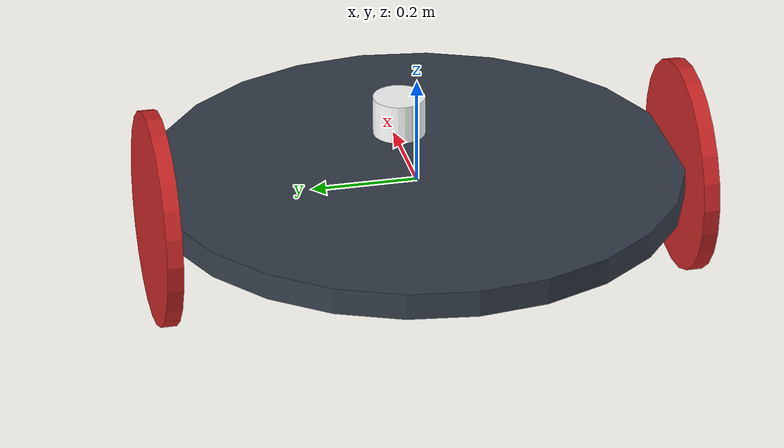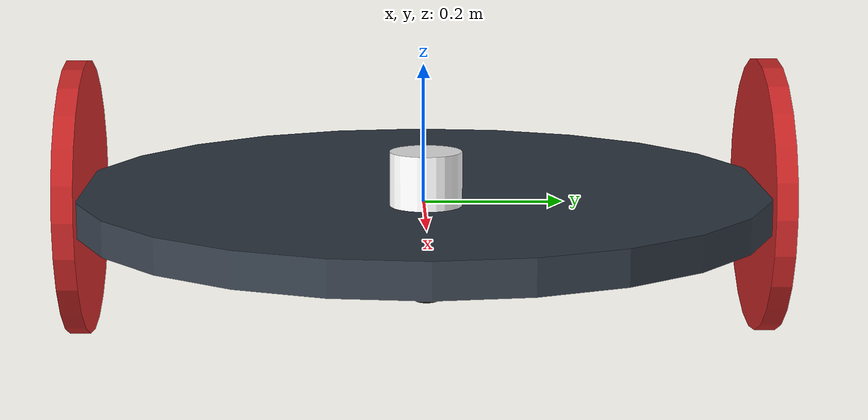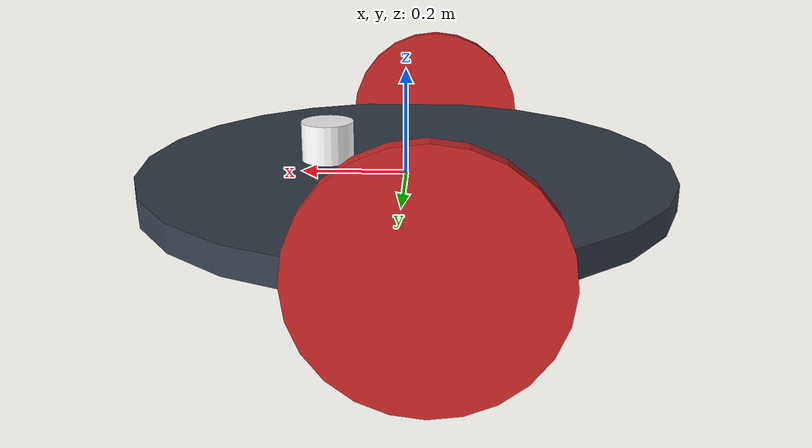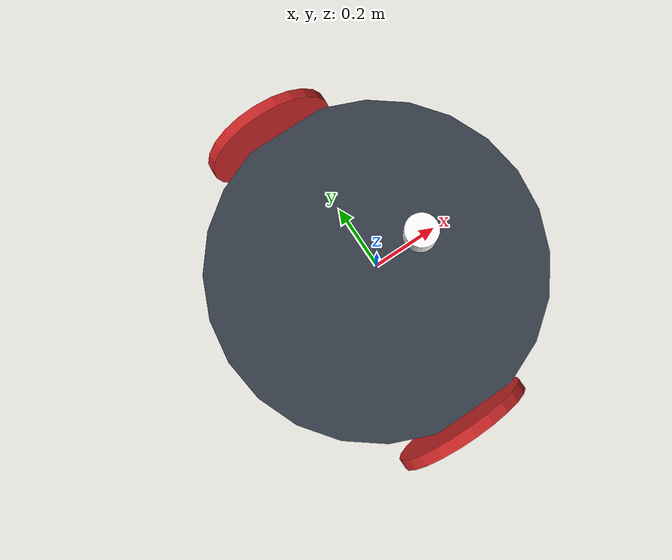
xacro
<?xml version="1.0" ?>

<robot name="mybot" xmlns:xacro="http://www.ros.org/wiki/xacro">

<!-- Include the Xacro files -->
  <xacro:include filename="$(find bot_description)/urdf/materials.xacro" />
  <xacro:include filename="$(find bot_description)/urdf/mybot.gazebo" />
  <xacro:include filename="$(find bot_description)/urdf/macro.xacro" />

 <!-- chassis definition -->
  <link name="link_chassis">
    <!-- pose and inertial -->
    <pose>0 0 0.1 0 0 0</pose>

    <inertial>
      <mass value="5"/>
      <origin rpy="0 0 0" xyz="0 0 0.1"/>
      <inertia ixx="0.0395416666667" ixy="0" ixz="0" iyy="0.106208333333" iyz="0" izz="0.106208333333"/>
    </inertial>

    <collision name="collision_chassis">
      <geometry>
        <cylinder length="0.05" radius="0.5"/>
      </geometry>
    </collision>

    <visual>
      <origin rpy="0 0 0" xyz="0 0 0"/>
      <geometry>
        <cylinder length="0.05" radius="0.5"/>
      </geometry>
      <material name="blue"/>
    </visual>

    <!-- caster front -->
    <collision name="caster_front_collision">
      <origin rpy=" 0 0 0" xyz="0.35 0 -0.05"/>
      <geometry>
        <sphere radius="0.05"/>
      </geometry>
      <surface>
        <friction>
          <ode>
            <mu>0</mu>
            <mu2>0</mu2>
            <fdir1>0 0 0</fdir1>
            <slip1>1.0</slip1>
            <slip2>1.0</slip2>
          </ode>
        </friction>
      </surface>
    </collision>
    <visual name="caster_front_visual">
      <origin rpy=" 0 0 0" xyz="0.2 0 -0.05"/>
      <geometry>
        <sphere radius="0.05"/>
      </geometry>
    </visual>
  </link>

  <!-- Link for laser -->
  <link name="sensor_laser">
    <inertial>
      <origin xyz="0 0 0" rpy="0 0 0" />
      <mass value="4" />
      <xacro:cylinder_inertia mass="1" r="0.05" l="0.1" />
    </inertial>

    <visual>
      <origin xyz="0 0 0" rpy="0 0 0" />
      <geometry>
        <cylinder radius="0.05" length="0.1"/>
      </geometry>
      <material name="white" />
      <material name="laserLight" />
    </visual>

    <collision>
      <origin xyz="0 0 0" rpy="0 0 0"/>
      <geometry>
        <cylinder radius="0.05" length="0.1"/>
      </geometry>
      <material name="collisionLaser" />
    </collision>
  </link>

  <!-- Joint for laser -->
  <joint name="joint_sensor_laser" type="fixed">
    <origin xyz="0.15 0 0.05" rpy="0 0 0"/>
    <parent link="link_chassis"/>
    <child link="sensor_laser"/>
  </joint>

  <!-- Right Wheel Link -->
  <xacro:link_wheel name="link_right_wheel" />

  <!--   Joint for right wheel  -->
  <xacro:joint_wheel name="joint_right_wheel"  child="link_right_wheel"  origin_xyz="-0.05 0.5 0"  />

  <!-- Left Wheel link -->
  <xacro:link_wheel name="link_left_wheel" />

  <!--   Joint for left wheel  -->
  <xacro:joint_wheel name="joint_left_wheel"   child="link_left_wheel"   origin_xyz="-0.05 -0.5 0"  />
  </robot>

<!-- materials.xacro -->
<robot name="mybot" xmlns:xacro="https://www.ros.org/wiki/xacro" >
  <material name="black">
    <color rgba="0.0 0.0 0.0 1.0"/>
  </material>
  <material name="blue">
    <color rgba="0.203125 0.23828125 0.28515625 1.0"/>
  </material>
  <material name="green">
    <color rgba="0.0 0.8 0.0 1.0"/>
  </material>
  <material name="grey">
    <color rgba="0.3 0.3 0.3 1.0"/>
  </material>
  <material name="orange">
    <color rgba="1.0 0.423529411765 0.0392156862745 1.0"/>
  </material>
  <material name="brown">
    <color rgba="0.870588235294 0.811764705882 0.764705882353 1.0"/>
  </material>
  <material name="red">
    <color rgba="0.80078125 0.12890625 0.1328125 1.0"/>
  </material>
 <material name="white">
    <color rgba="1.0 1.0 1.0 1.0"/>
  </material>
  <material name="laserLight">
    <lighting>1</lighting>
    <ambient>0.3 0.3 0.3 1</ambient>
    <diffuse>0.7 0.7 0.7 1</diffuse>
    <specular>0.01 0.01 0.01 1</specular>
    <emissive>0 0 0 1</emissive>
  </material>
  <material name="collisionLaser">
    <laser_retro>0</laser_retro>
    <max_contacts>10</max_contacts>
  </material>
  </robot>

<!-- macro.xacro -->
<robot xmlns:xacro="http://www.ros.org/wiki/xacro">
  <xacro:macro name="link_wheel" params="name">
    <link name="${name}">
      <inertial>
        <mass value="0.2"/>
        <origin rpy="0 1.5707 1.5707" xyz="0 0 0"/>
        <inertia ixx="0.000526666666667" ixy="0" ixz="0" iyy="0.000526666666667" iyz="0" izz="0.001"/>
      </inertial>
      <collision name="link_right_wheel_collision">
        <origin rpy="0 1.5707 1.5707" xyz="0 0 0"/>
        <geometry>
          <cylinder length="0.03" radius="0.2"/>
        </geometry>
      </collision>
      <visual name="${name}_visual">
        <origin rpy="0 1.5707 1.5707" xyz="0 0 0"/>
        <geometry>
          <cylinder length="0.03" radius="0.2"/>
        </geometry>
      </visual>
    </link>
  </xacro:macro>

  <xacro:macro name="joint_wheel" params="name child origin_xyz">
    <joint name="${name}" type="continuous">
      <origin rpy="0 0 0" xyz="${origin_xyz}"/>
      <child link="${child}"/>
      <parent link="link_chassis"/>
      <axis rpy="0 0 0" xyz="0 1 0"/>
      <limit effort="10000" velocity="1000"/>
      <joint_properties damping="1.0" friction="1.0"/>
    </joint>
  </xacro:macro>

  <xacro:macro name="cylinder_inertia" params="mass r l">
    <inertia ixx="${mass*(3*r*r+l*l)/12}" ixy = "0" ixz = "0"
              iyy="${mass*(3*r*r+l*l)/12}" iyz = "0" izz="${mass*(r*r)/2}" />
  </xacro:macro>
</robot>
